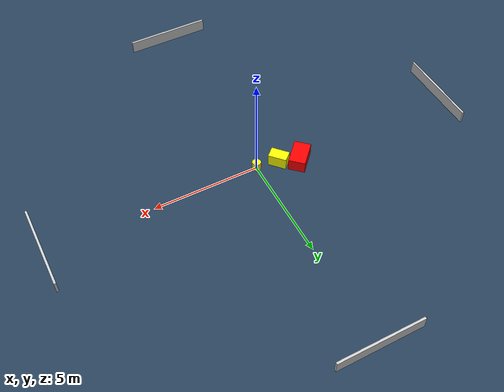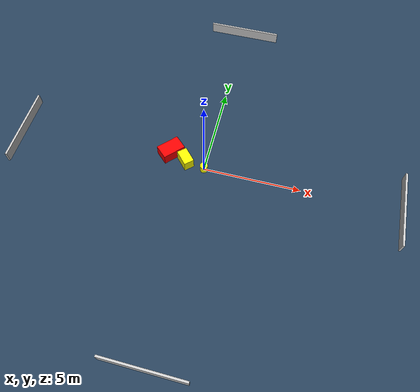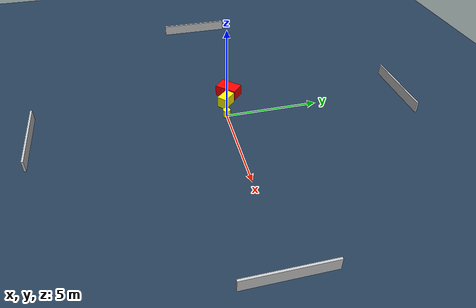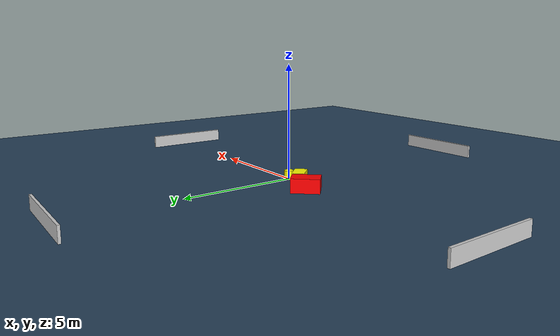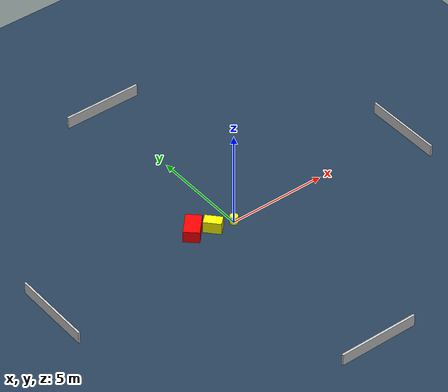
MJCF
<?xml version="1.0" ?>
<mujoco model="generated_environment">
  <option timestep="0.01" integrator="RK4" cone="elliptic"/>
  <default>
    <geom density="1"/>
  </default>
  <asset>
    <texture builtin="gradient" height="3072" name="skybox" rgb1="0.3 0.5 0.7" rgb2="0 0 0" type="skybox" width="512"/>
    <texture builtin="checker" height="300" name="groundplane" rgb1="0.2 0.3 0.4" rgb2="0.1 0.2 0.3" type="2d" width="300"/>
    <material name="groundplane" reflectance="0.2" texrepeat="5 5" texture="groundplane"/>
  </asset>
  <worldbody>
    <light dir="0 0 -1" directional="true" pos="0 0 1.5"/>
    <geom condim="3" friction="0.5 0.005 0.001" material="groundplane" name="floor" pos="0 0 0" size="0 0 0.05" type="plane"/>
    <body name="walls">
      <geom name="wall_1" condim="4" pos="-10.0 0.0 0.3" rgba="0.800000011920929 0.800000011920929 0.800000011920929 1.0" size="0.05 2.0 0.3" type="box"/>
      <geom name="wall_2" condim="4" pos="10.0 0.0 0.3" rgba="0.800000011920929 0.800000011920929 0.800000011920929 1.0" size="0.05 2.0 0.3" type="box"/>
      <geom name="wall_3" condim="4" pos="0.0 -10.0 0.3" rgba="0.800000011920929 0.800000011920929 0.800000011920929 1.0" size="2.0 0.05 0.3" type="box"/>
      <geom name="wall_4" condim="4" pos="0.0 10.0 0.3" rgba="0.800000011920929 0.800000011920929 0.800000011920929 1.0" size="2.0 0.05 0.3" type="box"/>
    </body>
    <body name="robot">
      <joint name="joint_x" type="slide" pos="0 0 0" axis="1 0 0"/>
      <joint name="joint_y" type="slide" pos="0 0 0" axis="0 1 0"/>
      <geom name="robot" type="cylinder" pos="0.0 0.0 0.2" size="0.2 0.2 0.0" mass="5.0" friction="1.0 0.005 0.0001" condim="4" rgba="1.0 1.0 0.0 1.0"/>
    </body>
    <body name="obstacle_1_movable">
      <geom name="obstacle_1_movable" condim="4" pos="-1.0330507342041424 0.19825675558348346 0.3" euler="0 0 222.37274450166885" friction="0.0 0.005 0.001" rgba="1.0 1.0 0.0 1.0" size="0.2628275444160694 0.42497863399867075 0.3" type="box" mass="0.1"/>
      <joint type="free"/>
    </body>
    <body name="obstacle_2_static">
      <geom name="obstacle_2_static" condim="4" pos="-1.9150676151272554 0.5545196769431187 0.3" euler="0 0 227.0323971429183" friction="0.0 0.005 0.001" rgba="1.0 0.0 0.0 1.0" size="0.6025302554124381 0.38457621298549893 0.3" type="box"/>
    </body>
  </worldbody>
  <actuator>
    <motor name="actuator_x" joint="joint_x" gear="1" ctrlrange="-1 1"/>
    <motor name="actuator_y" joint="joint_y" gear="1" ctrlrange="-1 1"/>
  </actuator>
</mujoco>
